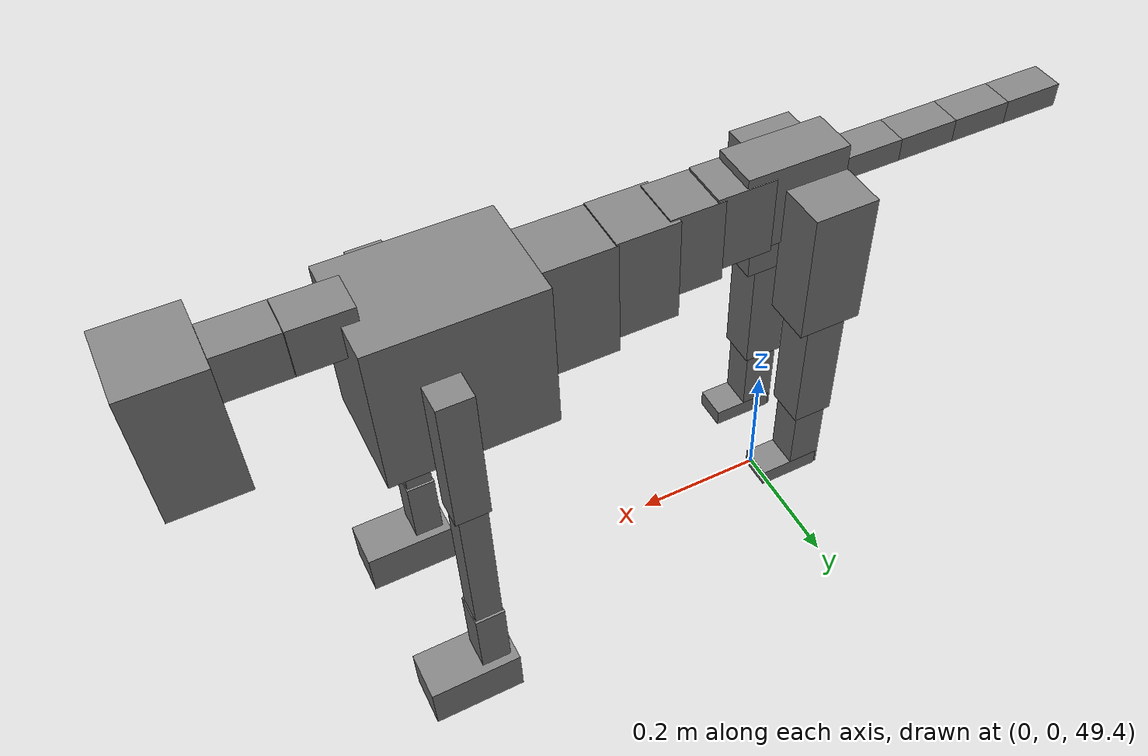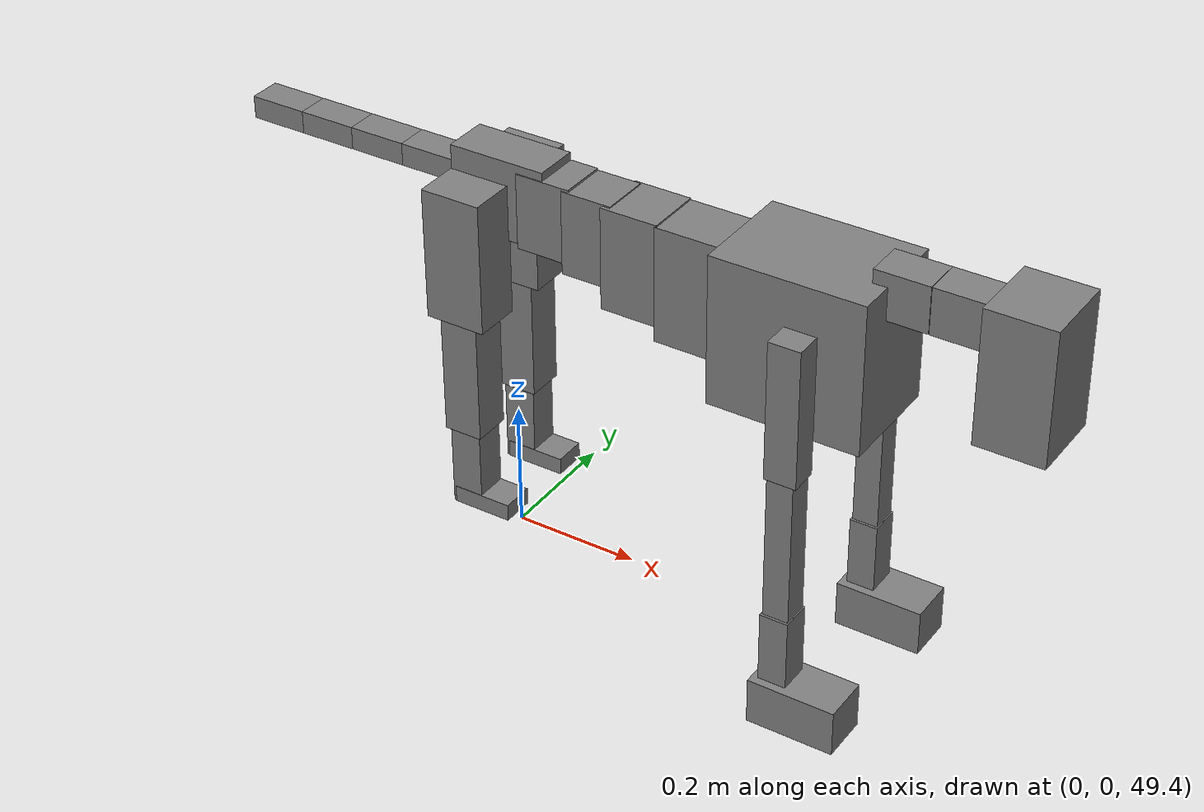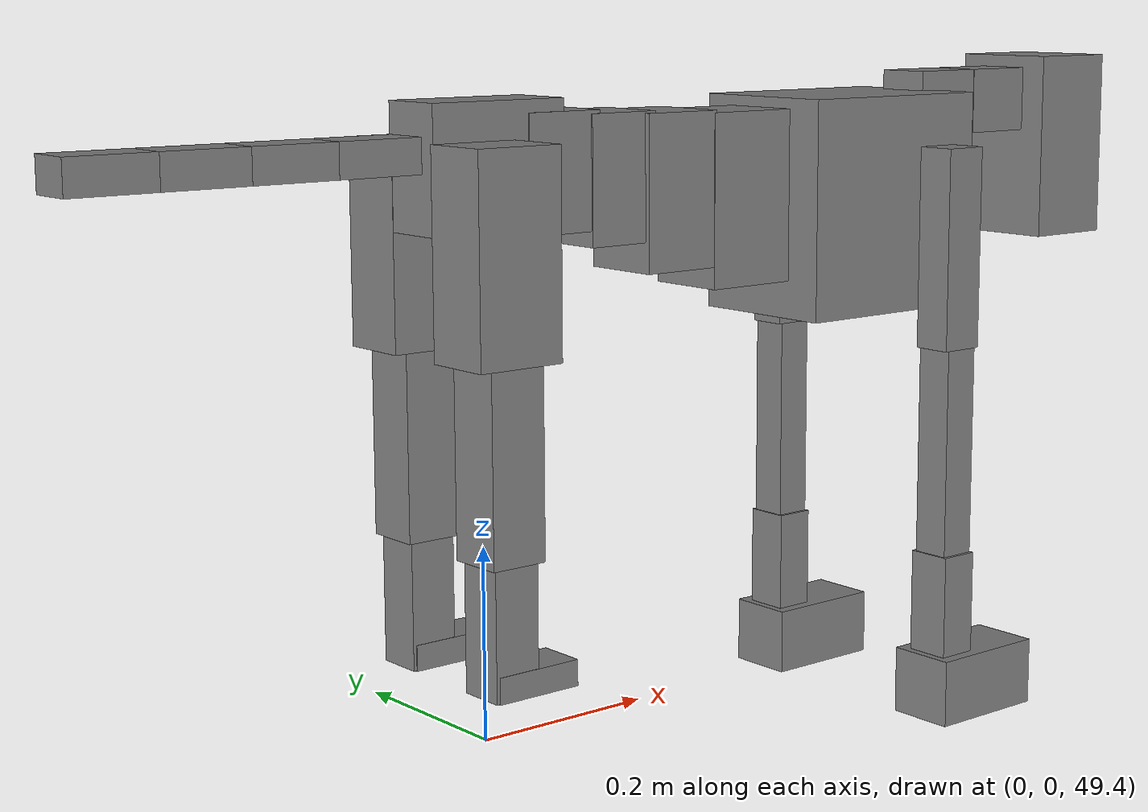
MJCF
<mujoco model="dog">

    <default>
        <joint armature="0.02" stiffness="1" damping="0.2" limited="true"/>
        <geom condim="3" friction="1 0.05 0.05" margin="0.01"/>
        <motor ctrllimited="true" ctrlrange="-1.0 1.0" forcelimited="true" gear="50"/>
    </default>

    <compiler inertiafromgeom="true" angle="radian"/>

    <option timestep="0.016" iterations="50" tolerance="1e-10" solver="Newton" jacobian="dense" cone="pyramidal"/>

    <size nconmax="20000" njmax="60000" nstack="5000000"/>
    <visual>
        <map force="0.1" zfar="30"/>
        <rgba haze="0.15 0.25 0.35 1"/>
        <quality shadowsize="2048"/>
        <global offwidth="800" offheight="800"/>
    </visual>

    <asset>
        <texture type="skybox" builtin="gradient" rgb1="0.3 0.5 0.7" rgb2="0 0 0" width="512" height="512"/>
        <texture name="texplane" type="2d" builtin="checker" rgb1=".2 .3 .4" rgb2=".1 0.15 0.2" width="512" height="512"
                 mark="cross" markrgb=".8 .8 .8"/>
        <texture name="texgeom" type="cube" builtin="flat" mark="cross" width="127" height="1278" rgb1="0.8 0.6 0.4"
                 rgb2="0.8 0.6 0.4" markrgb="1 1 1" random="0.01"/>

        <material name="matplane" reflectance="0.3" texture="texplane" texrepeat="1 1" texuniform="true"/>
        <material name="matgeom" texture="texgeom" texuniform="true" rgba="0.8 0.6 .4 1"/>
    </asset>

    <worldbody>
        <geom name="floor" pos="0 0 0" size="0 0 .25" type="plane" material="matplane" condim="3"/>

        <light directional="false" diffuse=".2 .2 .2" specular="0 0 0" pos="0 0 5" dir="0 0 -1" castshadow="false"/>
        <light mode="targetbodycom" target="torso" directional="false" diffuse=".8 .8 .8" specular="0.3 0.3 0.3"
               pos="0 0 4.0" dir="0 0 -1"/>

        <body name="root" pos="0 0 50">
            <freejoint name="root_1"/>
            <geom type="box" pos="0 0 -0.02" size="0.0774  0.0358  0.063" density="2030"/>

            <body name="spine1" pos="0.054 0 0">
                <joint name="spine1_y" axis="0 1 0" range="0 0.7" limited="true"/>
                <geom type="box" pos="0.02375 0 -0.03" size="0.04375  0.0375  0.05985" density="2030"/>

                <body name="spine2" pos="0.0612 0 0">
                    <joint name="spine2_y" axis="0 1 0" range="-0.15 0.15" limited="true"/>
                    <geom type="box" pos="0.03555  0  -0.04" size="0.04055  0.039  0.06615" density="2030"/>

                    <body name="spine3" pos="0.0730 0 0">
                        <joint name="spine3_y" axis="0 1 0" range="-0.15 0.15" limited="true"/>
                        <geom type="box" pos="0.03555  0  -0.057" size="0.04555  0.0445  0.081" density="2030"/>

                        <body name="spine4" pos="0.0780 0 0">
                            <joint name="spine4_y" axis="0 1 0" range="-0.15 0.15" limited="true"/>
                            <geom type="box" pos="0.05265  0  -0.07" size="0.05265  0.045  0.09135" density="2030"/>

                            <body name="torso" pos="0.1082 0 0">
                                <joint name="torso_y" axis="0 1 0" range="-0.15 0.15" limited="true"/>
                                <geom type="box" pos="0.11925  0  -0.085" size="0.11925  0.085  0.11745"
                                      density="2030"/>

                                <body name="neck1" pos="0.2160  0   0.0180">
                                    <joint name="neck1_y" axis="0 1 0" range="-1.2  -1" limited="true"/>
                                    <geom type="box" pos="0.0423  0  0" size="0.0423  0.03  0.036" density="2325"/>

                                    <body name="neck2" pos="0.0853  0  0">
                                        <joint name="neck2_y" axis="0 1 0" range="0.1  0" limited="true"/>
                                        <geom type="box" pos="0.0423  0  0" size="0.0423  0.03  0.036" density="2325"/>

                                        <body name="head" pos="0.0853  0  0">
                                            <joint name="head_y" axis="0 1 0" range="-0.3  -0.2" limited="true"/>
                                            <geom type="box" pos="0.0531  0  -0.055" size="0.0531  0.06  0.1044"
                                                  density="4030"/>

                                        </body>
                                    </body>
                                </body>

                                <body name="front_shoulder" pos="0.156  0   -0.0480">
                                    <joint name="front_shoulder_y" axis="0 1 0" range="-1 1.5" limited="true"/>
                                    <geom type="box" pos="0 0.13 -0.0822" size="0.0249  0.0213  0.1089" density="1158"/>
                                    <geom type="box" pos="0 -0.13 -0.0822" size="0.0249  0.0213  0.1089"
                                          density="1158"/>

                                    <body name="front_elbow" pos="0  0  -0.1645">
                                        <joint name="front_elbow_y" axis="0 1 0" range="-2 0" limited="true"/>
                                        <geom type="box" pos="0 0.13 -0.1340" size="0.0203  0.0207  0.1340"
                                              density="1081"/>
                                        <geom type="box" pos="0 -0.13 -0.1340" size="0.0203  0.0207  0.1340"
                                              density="1081"/>

                                        <body name="front_wrist" pos="0  0  -0.2681">
                                            <joint name="front_wrist_y" axis="0 1 0" range="-0.2 0" limited="true"/>
                                            <geom type="box" pos="0 0.13 -0.0574" size="0.0221  0.0246  0.0705"
                                                  density="1664"/>
                                            <geom type="box" pos="0 -0.13 -0.0574" size="0.0221  0.0246  0.0705"
                                                  density="1664"/>

                                            <body name="front_finger_end" pos="0  0  -0.1147">
                                                <joint name="front_finger_y" axis="0 1 0" range="-0.4 1"
                                                       limited="true"/>
                                                <geom type="box" pos="0.0376  0.13  -0.0217"
                                                      size="0.0689  0.0376  0.0367" density="1515"/>
                                                <geom type="box" pos="0.0376  -0.13  -0.0217"
                                                      size="0.0689  0.0376  0.0367" density="1515"/>

                                            </body>

                                        </body>
                                    </body>
                                </body>

                            </body>
                        </body>
                    </body>
                </body>
            </body>

            <body name="back_hip" pos="-0.03 0 -0.018">
                <joint name="back_hip_y" axis="0 1 0" range="-1.5 0.3" limited="true"/>
                <geom type="box" pos="0 0.07 -0.0809" size="0.0477  0.0374  0.1037" density="1154"/>
                <geom type="box" pos="0 -0.07 -0.0809" size="0.0477  0.0374  0.1037" density="1154"/>

                <body name="back_knee" pos="0  0  -0.1617">
                    <joint name="back_knee_y" axis="0 1 0" range="0 2.8" limited="true"/>
                    <geom type="box" pos="0 0.07 -0.1000" size="0.0305  0.0301  0.1155" density="1227"/>
                    <geom type="box" pos="0 -0.07 -0.1000" size="0.0305  0.0301  0.1155" density="1227"/>

                    <body name="back_ankle" pos="0  0  -0.1999">
                        <joint name="back_ankle_y" axis="0 1 0" range="-2.2 0" limited="true"/>
                        <geom type="box" pos="0 0.07 -0.0685" size="0.0251  0.0251  0.0797" density="1284"/>
                        <geom type="box" pos="0 -0.07 -0.0685" size="0.0251  0.0251  0.0797" density="1284"/>

                        <body name="back_toe_end" pos="0  0  -0.1370">
                            <joint name="back_toe_y" axis="0 1 0" range="-0.4 1" limited="true"/>
                            <geom type="box" pos="0.0257  0.07  0.0015" size="0.0472  0.0257  0.0135" density="1515"/>
                            <geom type="box" pos="0.0257  -0.07  0.0015" size="0.0472  0.0257  0.0135" density="1515"/>

                        </body>
                    </body>
                </body>
            </body>

            <body name="tail1" pos="-0.074 0 -0.006">
                <joint name="tail1_y" axis="0 1 0" range="-0.2 0.2" limited="true"/>
                <geom type="box" pos="-0.0536  0  0" size="0.045  0.025  0.0175" density="1587"/>

                <body name="tail2" pos="-0.09 0 0">
                    <joint name="tail2_y" axis="0 1 0" range="-0.2 0.2" limited="true"/>
                    <geom type="box" pos="-0.0536  0  0" size="0.045  0.025  0.0175" density="1587"/>

                    <body name="tail3" pos="-0.09 0 0">
                        <joint name="tail3_y" axis="0 1 0" range="-0.2 0.2" limited="true"/>
                        <geom type="box" pos="-0.0536  0  0" size="0.045  0.025  0.0175" density="1587"/>

                        <body name="tail4" pos="-0.09 0 0">
                            <joint name="tail4_y" axis="0 1 0" range="-0.2 0.2" limited="true"/>
                            <geom type="box" pos="-0.0536  0  0" size="0.045  0.025  0.0175" density="1587"/>

                        </body>
                    </body>
                </body>
            </body>
        </body>
    </worldbody>

    <actuator>
        <motor joint="spine1_y" forcerange="-150 150     "/>
        <motor joint="spine2_y" forcerange="-150 150     "/>
        <motor joint="spine3_y" forcerange="-150 150     "/>
        <motor joint="spine4_y" forcerange="-150 150     "/>
        <motor joint="torso_y" forcerange="-150 150     "/>
        <motor joint="neck1_y" forcerange="-100 100       "/>
        <motor joint="neck2_y" forcerange="-100 100       "/>
        <motor joint="head_y" forcerange="-150 150       "/>
        <motor joint="front_shoulder_y" forcerange="-129.22 112.85"/>
        <motor joint="front_elbow_y" forcerange="-116.82 133.95"/>
        <motor joint="front_wrist_y" forcerange="-138.83 57.65"/>
        <motor joint="front_finger_y" forcerange="-91.70 68.76"/>
        <motor joint="back_hip_y" forcerange="-329.25 369.13"/>
        <motor joint="back_knee_y" forcerange="-253.82 383.71"/>
        <motor joint="back_angle_y" forcerange="-201.00 100.26"/>
        <motor joint="back_toe_y" forcerange="-38.83 86.95"/>
        <motor joint="tail1_y" forcerange="-50 50     "/>
        <motor joint="tail2_y" forcerange="-50 50     "/>
        <motor joint="tail3_y" forcerange="-50 50     "/>
        <motor joint="tail4_y" forcerange="-50 50     "/>
    </actuator>
</mujoco>
